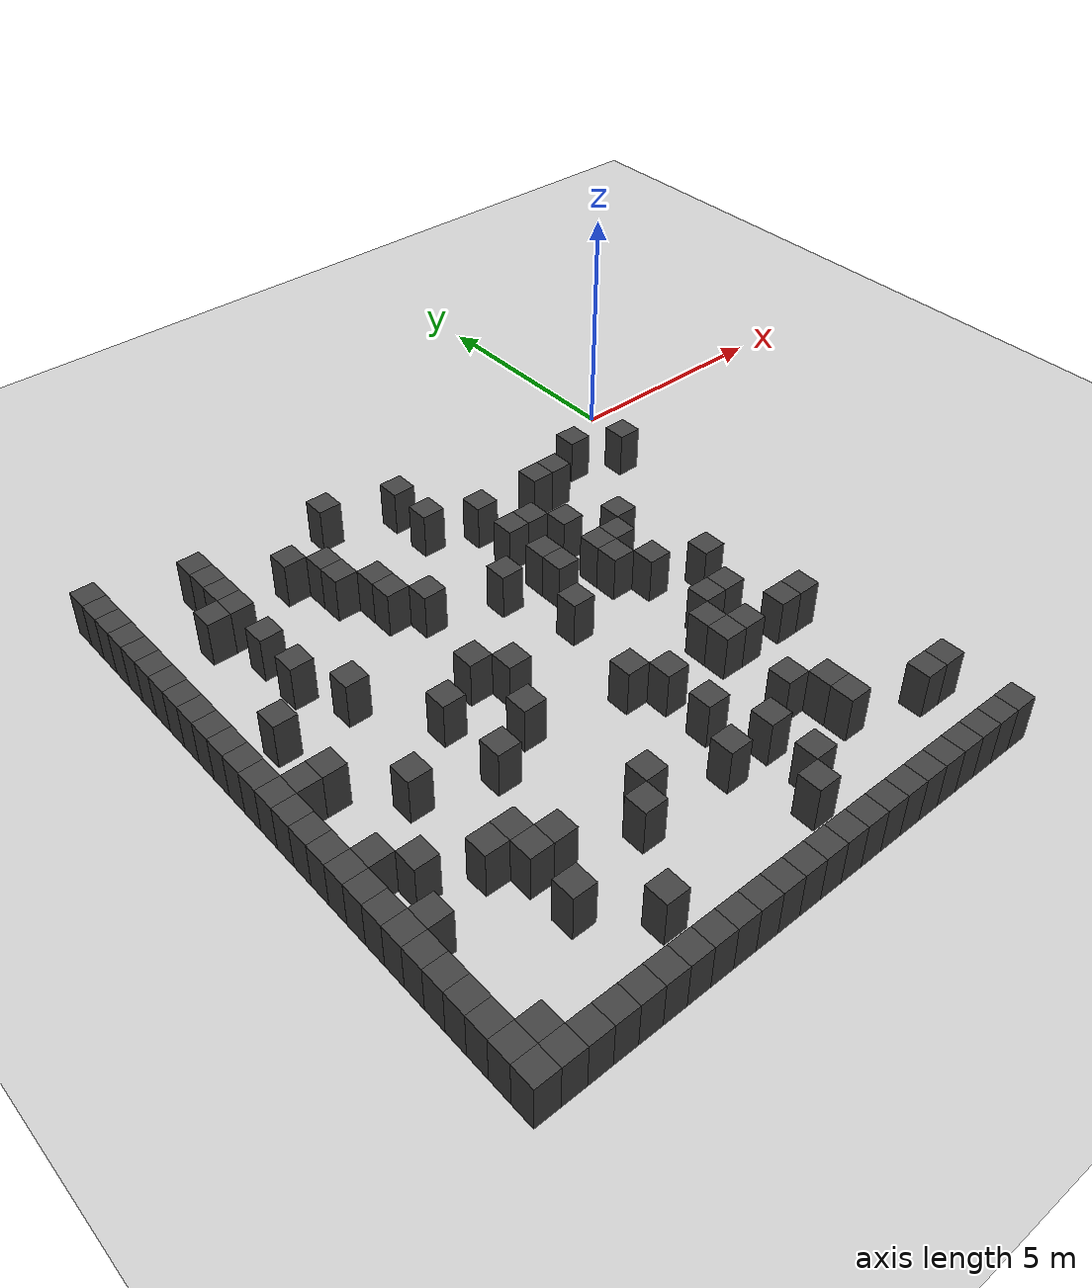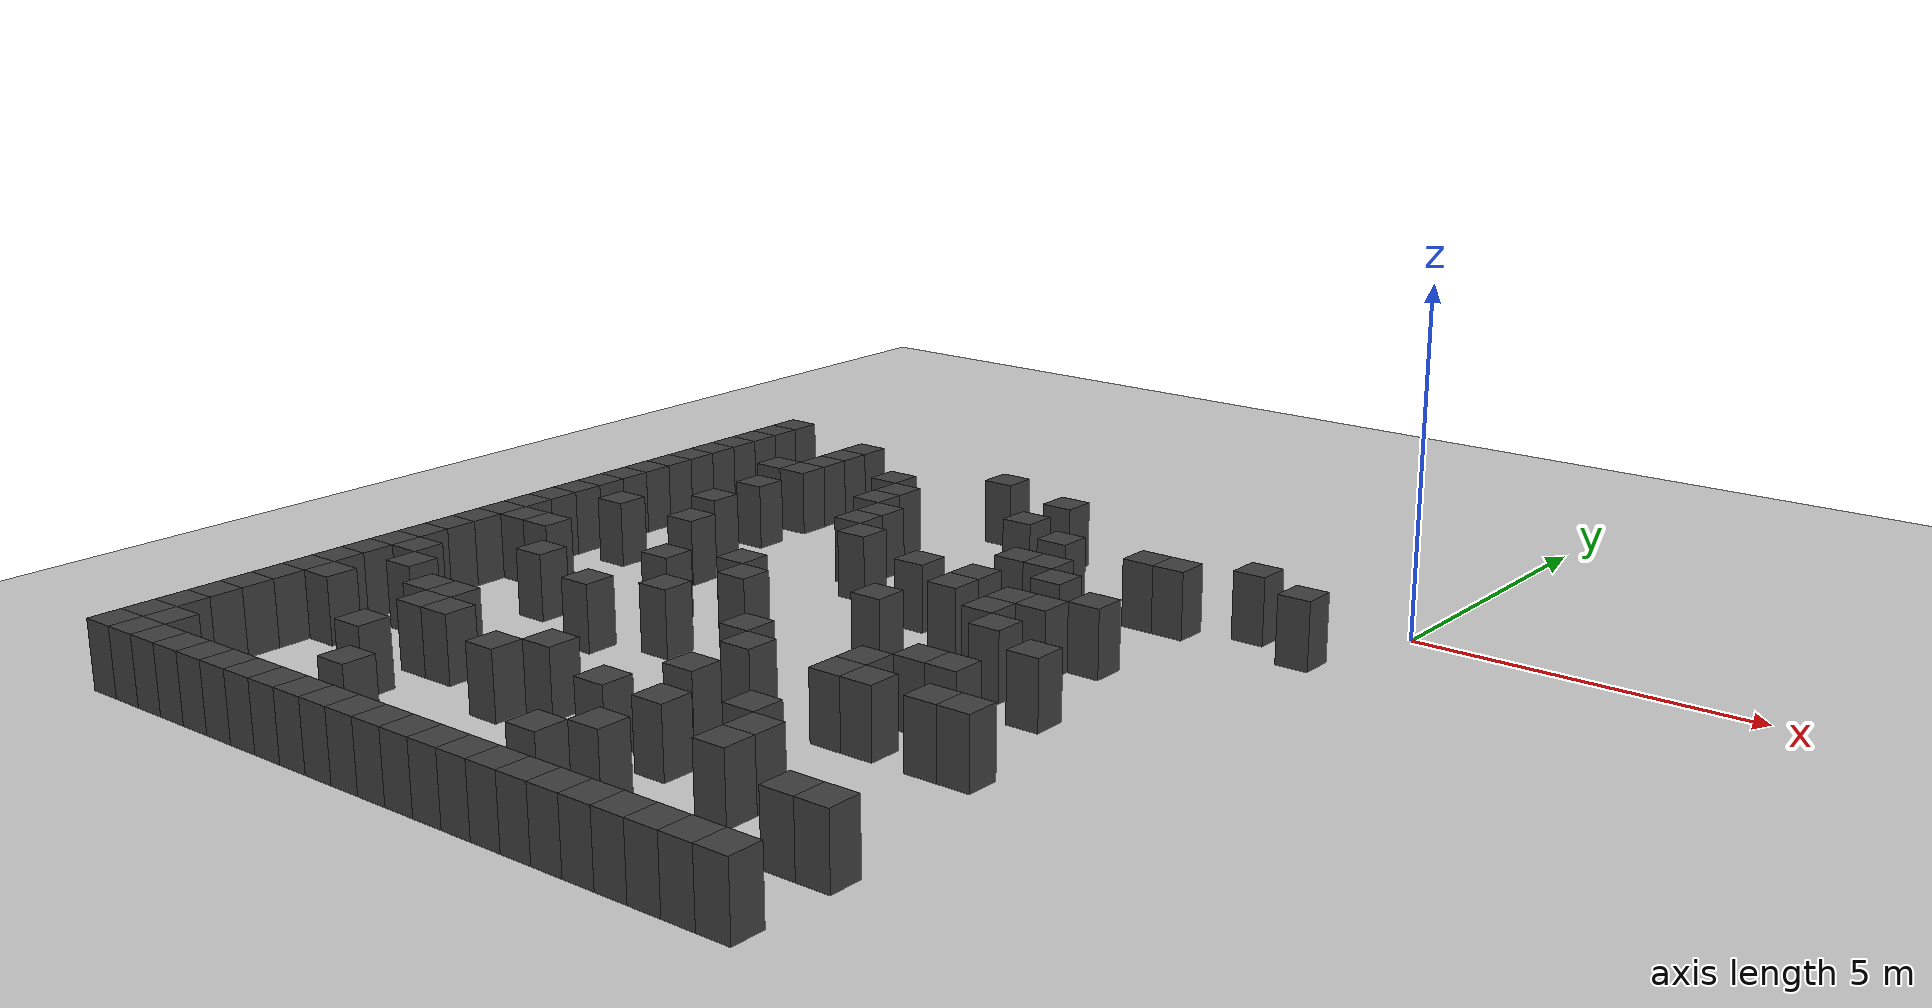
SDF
<sdf version="1.7">
 <world name="map_2523">
  <model name="ground_plane">
   <static>true</static>
   <link name="link">
    <collision name="collision">
     <geometry><plane><normal>0 0 1</normal><size>200 200</size></plane></geometry>
    </collision>
    <visual name="visual">
     <geometry><plane><normal>0 0 1</normal><size>200 200</size></plane></geometry>
     <material><ambient>0.8 0.8 0.8 1</ambient><diffuse>0.8 0.8 0.8 1</diffuse></material>
    </visual>
   </link>
  </model>
  <model name="maze_environment">
   <static>true</static>
   <link name="wall_234">
    <pose>-12.250 0.750 0.500 0 0 0</pose>
    <collision name="col"><geometry><box><size>0.5 0.5 1.0</size></box></geometry></collision>
    <visual name="vis">
     <geometry><box><size>0.5 0.5 1.0</size></box></geometry>
     <material><ambient>0.15 0.15 0.15 1</ambient><diffuse>0.25 0.25 0.25 1</diffuse></material>
    </visual>
   </link>
   <link name="wall_247">
    <pose>-12.250 0.250 0.500 0 0 0</pose>
    <collision name="col"><geometry><box><size>0.5 0.5 1.0</size></box></geometry></collision>
    <visual name="vis">
     <geometry><box><size>0.5 0.5 1.0</size></box></geometry>
     <material><ambient>0.15 0.15 0.15 1</ambient><diffuse>0.25 0.25 0.25 1</diffuse></material>
    </visual>
   </link>
   <link name="wall_248">
    <pose>-10.250 0.250 0.500 0 0 0</pose>
    <collision name="col"><geometry><box><size>0.5 0.5 1.0</size></box></geometry></collision>
    <visual name="vis">
     <geometry><box><size>0.5 0.5 1.0</size></box></geometry>
     <material><ambient>0.15 0.15 0.15 1</ambient><diffuse>0.25 0.25 0.25 1</diffuse></material>
    </visual>
   </link>
   <link name="wall_249">
    <pose>-7.250 0.250 0.500 0 0 0</pose>
    <collision name="col"><geometry><box><size>0.5 0.5 1.0</size></box></geometry></collision>
    <visual name="vis">
     <geometry><box><size>0.5 0.5 1.0</size></box></geometry>
     <material><ambient>0.15 0.15 0.15 1</ambient><diffuse>0.25 0.25 0.25 1</diffuse></material>
    </visual>
   </link>
   <link name="wall_258">
    <pose>-12.250 -0.250 0.500 0 0 0</pose>
    <collision name="col"><geometry><box><size>0.5 0.5 1.0</size></box></geometry></collision>
    <visual name="vis">
     <geometry><box><size>0.5 0.5 1.0</size></box></geometry>
     <material><ambient>0.15 0.15 0.15 1</ambient><diffuse>0.25 0.25 0.25 1</diffuse></material>
    </visual>
   </link>
   <link name="wall_259">
    <pose>-10.250 -0.250 0.500 0 0 0</pose>
    <collision name="col"><geometry><box><size>0.5 0.5 1.0</size></box></geometry></collision>
    <visual name="vis">
     <geometry><box><size>0.5 0.5 1.0</size></box></geometry>
     <material><ambient>0.15 0.15 0.15 1</ambient><diffuse>0.25 0.25 0.25 1</diffuse></material>
    </visual>
   </link>
   <link name="wall_260">
    <pose>-5.750 -0.250 0.500 0 0 0</pose>
    <collision name="col"><geometry><box><size>0.5 0.5 1.0</size></box></geometry></collision>
    <visual name="vis">
     <geometry><box><size>0.5 0.5 1.0</size></box></geometry>
     <material><ambient>0.15 0.15 0.15 1</ambient><diffuse>0.25 0.25 0.25 1</diffuse></material>
    </visual>
   </link>
   <link name="wall_263">
    <pose>-12.250 -0.750 0.500 0 0 0</pose>
    <collision name="col"><geometry><box><size>0.5 0.5 1.0</size></box></geometry></collision>
    <visual name="vis">
     <geometry><box><size>0.5 0.5 1.0</size></box></geometry>
     <material><ambient>0.15 0.15 0.15 1</ambient><diffuse>0.25 0.25 0.25 1</diffuse></material>
    </visual>
   </link>
   <link name="wall_264">
    <pose>-10.250 -0.750 0.500 0 0 0</pose>
    <collision name="col"><geometry><box><size>0.5 0.5 1.0</size></box></geometry></collision>
    <visual name="vis">
     <geometry><box><size>0.5 0.5 1.0</size></box></geometry>
     <material><ambient>0.15 0.15 0.15 1</ambient><diffuse>0.25 0.25 0.25 1</diffuse></material>
    </visual>
   </link>
   <link name="wall_265">
    <pose>-8.750 -0.750 0.500 0 0 0</pose>
    <collision name="col"><geometry><box><size>0.5 0.5 1.0</size></box></geometry></collision>
    <visual name="vis">
     <geometry><box><size>0.5 0.5 1.0</size></box></geometry>
     <material><ambient>0.15 0.15 0.15 1</ambient><diffuse>0.25 0.25 0.25 1</diffuse></material>
    </visual>
   </link>
   <link name="wall_273">
    <pose>-12.250 -1.250 0.500 0 0 0</pose>
    <collision name="col"><geometry><box><size>0.5 0.5 1.0</size></box></geometry></collision>
    <visual name="vis">
     <geometry><box><size>0.5 0.5 1.0</size></box></geometry>
     <material><ambient>0.15 0.15 0.15 1</ambient><diffuse>0.25 0.25 0.25 1</diffuse></material>
    </visual>
   </link>
   <link name="wall_274">
    <pose>-10.750 -1.250 0.500 0 0 0</pose>
    <collision name="col"><geometry><box><size>0.5 0.5 1.0</size></box></geometry></collision>
    <visual name="vis">
     <geometry><box><size>0.5 0.5 1.0</size></box></geometry>
     <material><ambient>0.15 0.15 0.15 1</ambient><diffuse>0.25 0.25 0.25 1</diffuse></material>
    </visual>
   </link>
   <link name="wall_275">
    <pose>-10.250 -1.250 0.500 0 0 0</pose>
    <collision name="col"><geometry><box><size>0.5 0.5 1.0</size></box></geometry></collision>
    <visual name="vis">
     <geometry><box><size>0.5 0.5 1.0</size></box></geometry>
     <material><ambient>0.15 0.15 0.15 1</ambient><diffuse>0.25 0.25 0.25 1</diffuse></material>
    </visual>
   </link>
   <link name="wall_276">
    <pose>-8.250 -1.250 0.500 0 0 0</pose>
    <collision name="col"><geometry><box><size>0.5 0.5 1.0</size></box></geometry></collision>
    <visual name="vis">
     <geometry><box><size>0.5 0.5 1.0</size></box></geometry>
     <material><ambient>0.15 0.15 0.15 1</ambient><diffuse>0.25 0.25 0.25 1</diffuse></material>
    </visual>
   </link>
   <link name="wall_277">
    <pose>-5.750 -1.250 0.500 0 0 0</pose>
    <collision name="col"><geometry><box><size>0.5 0.5 1.0</size></box></geometry></collision>
    <visual name="vis">
     <geometry><box><size>0.5 0.5 1.0</size></box></geometry>
     <material><ambient>0.15 0.15 0.15 1</ambient><diffuse>0.25 0.25 0.25 1</diffuse></material>
    </visual>
   </link>
   <link name="wall_278">
    <pose>-1.750 -1.250 0.500 0 0 0</pose>
    <collision name="col"><geometry><box><size>0.5 0.5 1.0</size></box></geometry></collision>
    <visual name="vis">
     <geometry><box><size>0.5 0.5 1.0</size></box></geometry>
     <material><ambient>0.15 0.15 0.15 1</ambient><diffuse>0.25 0.25 0.25 1</diffuse></material>
    </visual>
   </link>
   <link name="wall_284">
    <pose>-12.250 -1.750 0.500 0 0 0</pose>
    <collision name="col"><geometry><box><size>0.5 0.5 1.0</size></box></geometry></collision>
    <visual name="vis">
     <geometry><box><size>0.5 0.5 1.0</size></box></geometry>
     <material><ambient>0.15 0.15 0.15 1</ambient><diffuse>0.25 0.25 0.25 1</diffuse></material>
    </visual>
   </link>
   <link name="wall_285">
    <pose>-8.250 -1.750 0.500 0 0 0</pose>
    <collision name="col"><geometry><box><size>0.5 0.5 1.0</size></box></geometry></collision>
    <visual name="vis">
     <geometry><box><size>0.5 0.5 1.0</size></box></geometry>
     <material><ambient>0.15 0.15 0.15 1</ambient><diffuse>0.25 0.25 0.25 1</diffuse></material>
    </visual>
   </link>
   <link name="wall_286">
    <pose>-4.750 -1.750 0.500 0 0 0</pose>
    <collision name="col"><geometry><box><size>0.5 0.5 1.0</size></box></geometry></collision>
    <visual name="vis">
     <geometry><box><size>0.5 0.5 1.0</size></box></geometry>
     <material><ambient>0.15 0.15 0.15 1</ambient><diffuse>0.25 0.25 0.25 1</diffuse></material>
    </visual>
   </link>
   <link name="wall_287">
    <pose>-3.250 -1.750 0.500 0 0 0</pose>
    <collision name="col"><geometry><box><size>0.5 0.5 1.0</size></box></geometry></collision>
    <visual name="vis">
     <geometry><box><size>0.5 0.5 1.0</size></box></geometry>
     <material><ambient>0.15 0.15 0.15 1</ambient><diffuse>0.25 0.25 0.25 1</diffuse></material>
    </visual>
   </link>
   <link name="wall_288">
    <pose>-2.750 -1.750 0.500 0 0 0</pose>
    <collision name="col"><geometry><box><size>0.5 0.5 1.0</size></box></geometry></collision>
    <visual name="vis">
     <geometry><box><size>0.5 0.5 1.0</size></box></geometry>
     <material><ambient>0.15 0.15 0.15 1</ambient><diffuse>0.25 0.25 0.25 1</diffuse></material>
    </visual>
   </link>
   <link name="wall_289">
    <pose>-0.750 -1.750 0.500 0 0 0</pose>
    <collision name="col"><geometry><box><size>0.5 0.5 1.0</size></box></geometry></collision>
    <visual name="vis">
     <geometry><box><size>0.5 0.5 1.0</size></box></geometry>
     <material><ambient>0.15 0.15 0.15 1</ambient><diffuse>0.25 0.25 0.25 1</diffuse></material>
    </visual>
   </link>
   <link name="wall_294">
    <pose>-12.250 -2.250 0.500 0 0 0</pose>
    <collision name="col"><geometry><box><size>0.5 0.5 1.0</size></box></geometry></collision>
    <visual name="vis">
     <geometry><box><size>0.5 0.5 1.0</size></box></geometry>
     <material><ambient>0.15 0.15 0.15 1</ambient><diffuse>0.25 0.25 0.25 1</diffuse></material>
    </visual>
   </link>
   <link name="wall_295">
    <pose>-10.250 -2.250 0.500 0 0 0</pose>
    <collision name="col"><geometry><box><size>0.5 0.5 1.0</size></box></geometry></collision>
    <visual name="vis">
     <geometry><box><size>0.5 0.5 1.0</size></box></geometry>
     <material><ambient>0.15 0.15 0.15 1</ambient><diffuse>0.25 0.25 0.25 1</diffuse></material>
    </visual>
   </link>
   <link name="wall_296">
    <pose>-7.750 -2.250 0.500 0 0 0</pose>
    <collision name="col"><geometry><box><size>0.5 0.5 1.0</size></box></geometry></collision>
    <visual name="vis">
     <geometry><box><size>0.5 0.5 1.0</size></box></geometry>
     <material><ambient>0.15 0.15 0.15 1</ambient><diffuse>0.25 0.25 0.25 1</diffuse></material>
    </visual>
   </link>
   <link name="wall_301">
    <pose>-12.250 -2.750 0.500 0 0 0</pose>
    <collision name="col"><geometry><box><size>0.5 0.5 1.0</size></box></geometry></collision>
    <visual name="vis">
     <geometry><box><size>0.5 0.5 1.0</size></box></geometry>
     <material><ambient>0.15 0.15 0.15 1</ambient><diffuse>0.25 0.25 0.25 1</diffuse></material>
    </visual>
   </link>
   <link name="wall_302">
    <pose>-7.750 -2.750 0.500 0 0 0</pose>
    <collision name="col"><geometry><box><size>0.5 0.5 1.0</size></box></geometry></collision>
    <visual name="vis">
     <geometry><box><size>0.5 0.5 1.0</size></box></geometry>
     <material><ambient>0.15 0.15 0.15 1</ambient><diffuse>0.25 0.25 0.25 1</diffuse></material>
    </visual>
   </link>
   <link name="wall_303">
    <pose>-4.750 -2.750 0.500 0 0 0</pose>
    <collision name="col"><geometry><box><size>0.5 0.5 1.0</size></box></geometry></collision>
    <visual name="vis">
     <geometry><box><size>0.5 0.5 1.0</size></box></geometry>
     <material><ambient>0.15 0.15 0.15 1</ambient><diffuse>0.25 0.25 0.25 1</diffuse></material>
    </visual>
   </link>
   <link name="wall_304">
    <pose>-4.250 -2.750 0.500 0 0 0</pose>
    <collision name="col"><geometry><box><size>0.5 0.5 1.0</size></box></geometry></collision>
    <visual name="vis">
     <geometry><box><size>0.5 0.5 1.0</size></box></geometry>
     <material><ambient>0.15 0.15 0.15 1</ambient><diffuse>0.25 0.25 0.25 1</diffuse></material>
    </visual>
   </link>
   <link name="wall_308">
    <pose>-12.250 -3.250 0.500 0 0 0</pose>
    <collision name="col"><geometry><box><size>0.5 0.5 1.0</size></box></geometry></collision>
    <visual name="vis">
     <geometry><box><size>0.5 0.5 1.0</size></box></geometry>
     <material><ambient>0.15 0.15 0.15 1</ambient><diffuse>0.25 0.25 0.25 1</diffuse></material>
    </visual>
   </link>
   <link name="wall_309">
    <pose>-10.250 -3.250 0.500 0 0 0</pose>
    <collision name="col"><geometry><box><size>0.5 0.5 1.0</size></box></geometry></collision>
    <visual name="vis">
     <geometry><box><size>0.5 0.5 1.0</size></box></geometry>
     <material><ambient>0.15 0.15 0.15 1</ambient><diffuse>0.25 0.25 0.25 1</diffuse></material>
    </visual>
   </link>
   <link name="wall_310">
    <pose>-7.250 -3.250 0.500 0 0 0</pose>
    <collision name="col"><geometry><box><size>0.5 0.5 1.0</size></box></geometry></collision>
    <visual name="vis">
     <geometry><box><size>0.5 0.5 1.0</size></box></geometry>
     <material><ambient>0.15 0.15 0.15 1</ambient><diffuse>0.25 0.25 0.25 1</diffuse></material>
    </visual>
   </link>
   <link name="wall_311">
    <pose>-3.750 -3.250 0.500 0 0 0</pose>
    <collision name="col"><geometry><box><size>0.5 0.5 1.0</size></box></geometry></collision>
    <visual name="vis">
     <geometry><box><size>0.5 0.5 1.0</size></box></geometry>
     <material><ambient>0.15 0.15 0.15 1</ambient><diffuse>0.25 0.25 0.25 1</diffuse></material>
    </visual>
   </link>
   <link name="wall_315">
    <pose>-12.250 -3.750 0.500 0 0 0</pose>
    <collision name="col"><geometry><box><size>0.5 0.5 1.0</size></box></geometry></collision>
    <visual name="vis">
     <geometry><box><size>0.5 0.5 1.0</size></box></geometry>
     <material><ambient>0.15 0.15 0.15 1</ambient><diffuse>0.25 0.25 0.25 1</diffuse></material>
    </visual>
   </link>
   <link name="wall_316">
    <pose>-5.750 -3.750 0.500 0 0 0</pose>
    <collision name="col"><geometry><box><size>0.5 0.5 1.0</size></box></geometry></collision>
    <visual name="vis">
     <geometry><box><size>0.5 0.5 1.0</size></box></geometry>
     <material><ambient>0.15 0.15 0.15 1</ambient><diffuse>0.25 0.25 0.25 1</diffuse></material>
    </visual>
   </link>
   <link name="wall_317">
    <pose>-4.750 -3.750 0.500 0 0 0</pose>
    <collision name="col"><geometry><box><size>0.5 0.5 1.0</size></box></geometry></collision>
    <visual name="vis">
     <geometry><box><size>0.5 0.5 1.0</size></box></geometry>
     <material><ambient>0.15 0.15 0.15 1</ambient><diffuse>0.25 0.25 0.25 1</diffuse></material>
    </visual>
   </link>
   <link name="wall_318">
    <pose>-2.750 -3.750 0.500 0 0 0</pose>
    <collision name="col"><geometry><box><size>0.5 0.5 1.0</size></box></geometry></collision>
    <visual name="vis">
     <geometry><box><size>0.5 0.5 1.0</size></box></geometry>
     <material><ambient>0.15 0.15 0.15 1</ambient><diffuse>0.25 0.25 0.25 1</diffuse></material>
    </visual>
   </link>
   <link name="wall_321">
    <pose>-12.250 -4.250 0.500 0 0 0</pose>
    <collision name="col"><geometry><box><size>0.5 0.5 1.0</size></box></geometry></collision>
    <visual name="vis">
     <geometry><box><size>0.5 0.5 1.0</size></box></geometry>
     <material><ambient>0.15 0.15 0.15 1</ambient><diffuse>0.25 0.25 0.25 1</diffuse></material>
    </visual>
   </link>
   <link name="wall_322">
    <pose>-11.250 -4.250 0.500 0 0 0</pose>
    <collision name="col"><geometry><box><size>0.5 0.5 1.0</size></box></geometry></collision>
    <visual name="vis">
     <geometry><box><size>0.5 0.5 1.0</size></box></geometry>
     <material><ambient>0.15 0.15 0.15 1</ambient><diffuse>0.25 0.25 0.25 1</diffuse></material>
    </visual>
   </link>
   <link name="wall_323">
    <pose>-9.750 -4.250 0.500 0 0 0</pose>
    <collision name="col"><geometry><box><size>0.5 0.5 1.0</size></box></geometry></collision>
    <visual name="vis">
     <geometry><box><size>0.5 0.5 1.0</size></box></geometry>
     <material><ambient>0.15 0.15 0.15 1</ambient><diffuse>0.25 0.25 0.25 1</diffuse></material>
    </visual>
   </link>
   <link name="wall_324">
    <pose>-4.750 -4.250 0.500 0 0 0</pose>
    <collision name="col"><geometry><box><size>0.5 0.5 1.0</size></box></geometry></collision>
    <visual name="vis">
     <geometry><box><size>0.5 0.5 1.0</size></box></geometry>
     <material><ambient>0.15 0.15 0.15 1</ambient><diffuse>0.25 0.25 0.25 1</diffuse></material>
    </visual>
   </link>
   <link name="wall_325">
    <pose>-3.750 -4.250 0.500 0 0 0</pose>
    <collision name="col"><geometry><box><size>0.5 0.5 1.0</size></box></geometry></collision>
    <visual name="vis">
     <geometry><box><size>0.5 0.5 1.0</size></box></geometry>
     <material><ambient>0.15 0.15 0.15 1</ambient><diffuse>0.25 0.25 0.25 1</diffuse></material>
    </visual>
   </link>
   <link name="wall_326">
    <pose>-3.250 -4.250 0.500 0 0 0</pose>
    <collision name="col"><geometry><box><size>0.5 0.5 1.0</size></box></geometry></collision>
    <visual name="vis">
     <geometry><box><size>0.5 0.5 1.0</size></box></geometry>
     <material><ambient>0.15 0.15 0.15 1</ambient><diffuse>0.25 0.25 0.25 1</diffuse></material>
    </visual>
   </link>
   <link name="wall_334">
    <pose>-12.250 -4.750 0.500 0 0 0</pose>
    <collision name="col"><geometry><box><size>0.5 0.5 1.0</size></box></geometry></collision>
    <visual name="vis">
     <geometry><box><size>0.5 0.5 1.0</size></box></geometry>
     <material><ambient>0.15 0.15 0.15 1</ambient><diffuse>0.25 0.25 0.25 1</diffuse></material>
    </visual>
   </link>
   <link name="wall_335">
    <pose>-3.750 -4.750 0.500 0 0 0</pose>
    <collision name="col"><geometry><box><size>0.5 0.5 1.0</size></box></geometry></collision>
    <visual name="vis">
     <geometry><box><size>0.5 0.5 1.0</size></box></geometry>
     <material><ambient>0.15 0.15 0.15 1</ambient><diffuse>0.25 0.25 0.25 1</diffuse></material>
    </visual>
   </link>
   <link name="wall_340">
    <pose>-12.250 -5.250 0.500 0 0 0</pose>
    <collision name="col"><geometry><box><size>0.5 0.5 1.0</size></box></geometry></collision>
    <visual name="vis">
     <geometry><box><size>0.5 0.5 1.0</size></box></geometry>
     <material><ambient>0.15 0.15 0.15 1</ambient><diffuse>0.25 0.25 0.25 1</diffuse></material>
    </visual>
   </link>
   <link name="wall_341">
    <pose>-7.750 -5.250 0.500 0 0 0</pose>
    <collision name="col"><geometry><box><size>0.5 0.5 1.0</size></box></geometry></collision>
    <visual name="vis">
     <geometry><box><size>0.5 0.5 1.0</size></box></geometry>
     <material><ambient>0.15 0.15 0.15 1</ambient><diffuse>0.25 0.25 0.25 1</diffuse></material>
    </visual>
   </link>
   <link name="wall_342">
    <pose>-5.250 -5.250 0.500 0 0 0</pose>
    <collision name="col"><geometry><box><size>0.5 0.5 1.0</size></box></geometry></collision>
    <visual name="vis">
     <geometry><box><size>0.5 0.5 1.0</size></box></geometry>
     <material><ambient>0.15 0.15 0.15 1</ambient><diffuse>0.25 0.25 0.25 1</diffuse></material>
    </visual>
   </link>
   <link name="wall_343">
    <pose>-3.250 -5.250 0.500 0 0 0</pose>
    <collision name="col"><geometry><box><size>0.5 0.5 1.0</size></box></geometry></collision>
    <visual name="vis">
     <geometry><box><size>0.5 0.5 1.0</size></box></geometry>
     <material><ambient>0.15 0.15 0.15 1</ambient><diffuse>0.25 0.25 0.25 1</diffuse></material>
    </visual>
   </link>
   <link name="wall_346">
    <pose>-12.250 -5.750 0.500 0 0 0</pose>
    <collision name="col"><geometry><box><size>0.5 0.5 1.0</size></box></geometry></collision>
    <visual name="vis">
     <geometry><box><size>0.5 0.5 1.0</size></box></geometry>
     <material><ambient>0.15 0.15 0.15 1</ambient><diffuse>0.25 0.25 0.25 1</diffuse></material>
    </visual>
   </link>
   <link name="wall_347">
    <pose>-11.750 -5.750 0.500 0 0 0</pose>
    <collision name="col"><geometry><box><size>0.5 0.5 1.0</size></box></geometry></collision>
    <visual name="vis">
     <geometry><box><size>0.5 0.5 1.0</size></box></geometry>
     <material><ambient>0.15 0.15 0.15 1</ambient><diffuse>0.25 0.25 0.25 1</diffuse></material>
    </visual>
   </link>
   <link name="wall_348">
    <pose>-11.250 -5.750 0.500 0 0 0</pose>
    <collision name="col"><geometry><box><size>0.5 0.5 1.0</size></box></geometry></collision>
    <visual name="vis">
     <geometry><box><size>0.5 0.5 1.0</size></box></geometry>
     <material><ambient>0.15 0.15 0.15 1</ambient><diffuse>0.25 0.25 0.25 1</diffuse></material>
    </visual>
   </link>
   <link name="wall_349">
    <pose>-8.750 -5.750 0.500 0 0 0</pose>
    <collision name="col"><geometry><box><size>0.5 0.5 1.0</size></box></geometry></collision>
    <visual name="vis">
     <geometry><box><size>0.5 0.5 1.0</size></box></geometry>
     <material><ambient>0.15 0.15 0.15 1</ambient><diffuse>0.25 0.25 0.25 1</diffuse></material>
    </visual>
   </link>
   <link name="wall_350">
    <pose>-7.250 -5.750 0.500 0 0 0</pose>
    <collision name="col"><geometry><box><size>0.5 0.5 1.0</size></box></geometry></collision>
    <visual name="vis">
     <geometry><box><size>0.5 0.5 1.0</size></box></geometry>
     <material><ambient>0.15 0.15 0.15 1</ambient><diffuse>0.25 0.25 0.25 1</diffuse></material>
    </visual>
   </link>
   <link name="wall_351">
    <pose>-2.250 -5.750 0.500 0 0 0</pose>
    <collision name="col"><geometry><box><size>0.5 0.5 1.0</size></box></geometry></collision>
    <visual name="vis">
     <geometry><box><size>0.5 0.5 1.0</size></box></geometry>
     <material><ambient>0.15 0.15 0.15 1</ambient><diffuse>0.25 0.25 0.25 1</diffuse></material>
    </visual>
   </link>
   <link name="wall_355">
    <pose>-12.250 -6.250 0.500 0 0 0</pose>
    <collision name="col"><geometry><box><size>0.5 0.5 1.0</size></box></geometry></collision>
    <visual name="vis">
     <geometry><box><size>0.5 0.5 1.0</size></box></geometry>
     <material><ambient>0.15 0.15 0.15 1</ambient><diffuse>0.25 0.25 0.25 1</diffuse></material>
    </visual>
   </link>
   <link name="wall_359">
    <pose>-12.250 -6.750 0.500 0 0 0</pose>
    <collision name="col"><geometry><box><size>0.5 0.5 1.0</size></box></geometry></collision>
    <visual name="vis">
     <geometry><box><size>0.5 0.5 1.0</size></box></geometry>
     <material><ambient>0.15 0.15 0.15 1</ambient><diffuse>0.25 0.25 0.25 1</diffuse></material>
    </visual>
   </link>
   <link name="wall_360">
    <pose>-10.250 -6.750 0.500 0 0 0</pose>
    <collision name="col"><geometry><box><size>0.5 0.5 1.0</size></box></geometry></collision>
    <visual name="vis">
     <geometry><box><size>0.5 0.5 1.0</size></box></geometry>
     <material><ambient>0.15 0.15 0.15 1</ambient><diffuse>0.25 0.25 0.25 1</diffuse></material>
    </visual>
   </link>
   <link name="wall_361">
    <pose>-7.750 -6.750 0.500 0 0 0</pose>
    <collision name="col"><geometry><box><size>0.5 0.5 1.0</size></box></geometry></collision>
    <visual name="vis">
     <geometry><box><size>0.5 0.5 1.0</size></box></geometry>
     <material><ambient>0.15 0.15 0.15 1</ambient><diffuse>0.25 0.25 0.25 1</diffuse></material>
    </visual>
   </link>
   <link name="wall_362">
    <pose>-3.250 -6.750 0.500 0 0 0</pose>
    <collision name="col"><geometry><box><size>0.5 0.5 1.0</size></box></geometry></collision>
    <visual name="vis">
     <geometry><box><size>0.5 0.5 1.0</size></box></geometry>
     <material><ambient>0.15 0.15 0.15 1</ambient><diffuse>0.25 0.25 0.25 1</diffuse></material>
    </visual>
   </link>
   <link name="wall_363">
    <pose>-2.750 -6.750 0.500 0 0 0</pose>
    <collision name="col"><geometry><box><size>0.5 0.5 1.0</size></box></geometry></collision>
    <visual name="vis">
     <geometry><box><size>0.5 0.5 1.0</size></box></geometry>
     <material><ambient>0.15 0.15 0.15 1</ambient><diffuse>0.25 0.25 0.25 1</diffuse></material>
    </visual>
   </link>
   <link name="wall_369">
    <pose>-12.250 -7.250 0.500 0 0 0</pose>
    <collision name="col"><geometry><box><size>0.5 0.5 1.0</size></box></geometry></collision>
    <visual name="vis">
     <geometry><box><size>0.5 0.5 1.0</size></box></geometry>
     <material><ambient>0.15 0.15 0.15 1</ambient><diffuse>0.25 0.25 0.25 1</diffuse></material>
    </visual>
   </link>
   <link name="wall_370">
    <pose>-8.750 -7.250 0.500 0 0 0</pose>
    <collision name="col"><geometry><box><size>0.5 0.5 1.0</size></box></geometry></collision>
    <visual name="vis">
     <geometry><box><size>0.5 0.5 1.0</size></box></geometry>
     <material><ambient>0.15 0.15 0.15 1</ambient><diffuse>0.25 0.25 0.25 1</diffuse></material>
    </visual>
   </link>
   <link name="wall_371">
    <pose>-5.750 -7.250 0.500 0 0 0</pose>
    <collision name="col"><geometry><box><size>0.5 0.5 1.0</size></box></geometry></collision>
    <visual name="vis">
     <geometry><box><size>0.5 0.5 1.0</size></box></geometry>
     <material><ambient>0.15 0.15 0.15 1</ambient><diffuse>0.25 0.25 0.25 1</diffuse></material>
    </visual>
   </link>
   <link name="wall_372">
    <pose>-3.750 -7.250 0.500 0 0 0</pose>
    <collision name="col"><geometry><box><size>0.5 0.5 1.0</size></box></geometry></collision>
    <visual name="vis">
     <geometry><box><size>0.5 0.5 1.0</size></box></geometry>
     <material><ambient>0.15 0.15 0.15 1</ambient><diffuse>0.25 0.25 0.25 1</diffuse></material>
    </visual>
   </link>
   <link name="wall_378">
    <pose>-12.250 -7.750 0.500 0 0 0</pose>
    <collision name="col"><geometry><box><size>0.5 0.5 1.0</size></box></geometry></collision>
    <visual name="vis">
     <geometry><box><size>0.5 0.5 1.0</size></box></geometry>
     <material><ambient>0.15 0.15 0.15 1</ambient><diffuse>0.25 0.25 0.25 1</diffuse></material>
    </visual>
   </link>
   <link name="wall_379">
    <pose>-11.750 -7.750 0.500 0 0 0</pose>
    <collision name="col"><geometry><box><size>0.5 0.5 1.0</size></box></geometry></collision>
    <visual name="vis">
     <geometry><box><size>0.5 0.5 1.0</size></box></geometry>
     <material><ambient>0.15 0.15 0.15 1</ambient><diffuse>0.25 0.25 0.25 1</diffuse></material>
    </visual>
   </link>
   <link name="wall_380">
    <pose>-5.250 -7.750 0.500 0 0 0</pose>
    <collision name="col"><geometry><box><size>0.5 0.5 1.0</size></box></geometry></collision>
    <visual name="vis">
     <geometry><box><size>0.5 0.5 1.0</size></box></geometry>
     <material><ambient>0.15 0.15 0.15 1</ambient><diffuse>0.25 0.25 0.25 1</diffuse></material>
    </visual>
   </link>
   <link name="wall_381">
    <pose>-3.750 -7.750 0.500 0 0 0</pose>
    <collision name="col"><geometry><box><size>0.5 0.5 1.0</size></box></geometry></collision>
    <visual name="vis">
     <geometry><box><size>0.5 0.5 1.0</size></box></geometry>
     <material><ambient>0.15 0.15 0.15 1</ambient><diffuse>0.25 0.25 0.25 1</diffuse></material>
    </visual>
   </link>
   <link name="wall_382">
    <pose>-3.250 -7.750 0.500 0 0 0</pose>
    <collision name="col"><geometry><box><size>0.5 0.5 1.0</size></box></geometry></collision>
    <visual name="vis">
     <geometry><box><size>0.5 0.5 1.0</size></box></geometry>
     <material><ambient>0.15 0.15 0.15 1</ambient><diffuse>0.25 0.25 0.25 1</diffuse></material>
    </visual>
   </link>
   <link name="wall_383">
    <pose>-2.250 -7.750 0.500 0 0 0</pose>
    <collision name="col"><geometry><box><size>0.5 0.5 1.0</size></box></geometry></collision>
    <visual name="vis">
     <geometry><box><size>0.5 0.5 1.0</size></box></geometry>
     <material><ambient>0.15 0.15 0.15 1</ambient><diffuse>0.25 0.25 0.25 1</diffuse></material>
    </visual>
   </link>
   <link name="wall_384">
    <pose>-1.750 -7.750 0.500 0 0 0</pose>
    <collision name="col"><geometry><box><size>0.5 0.5 1.0</size></box></geometry></collision>
    <visual name="vis">
     <geometry><box><size>0.5 0.5 1.0</size></box></geometry>
     <material><ambient>0.15 0.15 0.15 1</ambient><diffuse>0.25 0.25 0.25 1</diffuse></material>
    </visual>
   </link>
   <link name="wall_389">
    <pose>-12.250 -8.250 0.500 0 0 0</pose>
    <collision name="col"><geometry><box><size>0.5 0.5 1.0</size></box></geometry></collision>
    <visual name="vis">
     <geometry><box><size>0.5 0.5 1.0</size></box></geometry>
     <material><ambient>0.15 0.15 0.15 1</ambient><diffuse>0.25 0.25 0.25 1</diffuse></material>
    </visual>
   </link>
   <link name="wall_390">
    <pose>-11.250 -8.250 0.500 0 0 0</pose>
    <collision name="col"><geometry><box><size>0.5 0.5 1.0</size></box></geometry></collision>
    <visual name="vis">
     <geometry><box><size>0.5 0.5 1.0</size></box></geometry>
     <material><ambient>0.15 0.15 0.15 1</ambient><diffuse>0.25 0.25 0.25 1</diffuse></material>
    </visual>
   </link>
   <link name="wall_395">
    <pose>-12.250 -8.750 0.500 0 0 0</pose>
    <collision name="col"><geometry><box><size>0.5 0.5 1.0</size></box></geometry></collision>
    <visual name="vis">
     <geometry><box><size>0.5 0.5 1.0</size></box></geometry>
     <material><ambient>0.15 0.15 0.15 1</ambient><diffuse>0.25 0.25 0.25 1</diffuse></material>
    </visual>
   </link>
   <link name="wall_396">
    <pose>-10.250 -8.750 0.500 0 0 0</pose>
    <collision name="col"><geometry><box><size>0.5 0.5 1.0</size></box></geometry></collision>
    <visual name="vis">
     <geometry><box><size>0.5 0.5 1.0</size></box></geometry>
     <material><ambient>0.15 0.15 0.15 1</ambient><diffuse>0.25 0.25 0.25 1</diffuse></material>
    </visual>
   </link>
   <link name="wall_397">
    <pose>-9.750 -8.750 0.500 0 0 0</pose>
    <collision name="col"><geometry><box><size>0.5 0.5 1.0</size></box></geometry></collision>
    <visual name="vis">
     <geometry><box><size>0.5 0.5 1.0</size></box></geometry>
     <material><ambient>0.15 0.15 0.15 1</ambient><diffuse>0.25 0.25 0.25 1</diffuse></material>
    </visual>
   </link>
   <link name="wall_398">
    <pose>-5.250 -8.750 0.500 0 0 0</pose>
    <collision name="col"><geometry><box><size>0.5 0.5 1.0</size></box></geometry></collision>
    <visual name="vis">
     <geometry><box><size>0.5 0.5 1.0</size></box></geometry>
     <material><ambient>0.15 0.15 0.15 1</ambient><diffuse>0.25 0.25 0.25 1</diffuse></material>
    </visual>
   </link>
   <link name="wall_403">
    <pose>-12.250 -9.250 0.500 0 0 0</pose>
    <collision name="col"><geometry><box><size>0.5 0.5 1.0</size></box></geometry></collision>
    <visual name="vis">
     <geometry><box><size>0.5 0.5 1.0</size></box></geometry>
     <material><ambient>0.15 0.15 0.15 1</ambient><diffuse>0.25 0.25 0.25 1</diffuse></material>
    </visual>
   </link>
   <link name="wall_404">
    <pose>-11.750 -9.250 0.500 0 0 0</pose>
    <collision name="col"><geometry><box><size>0.5 0.5 1.0</size></box></geometry></collision>
    <visual name="vis">
     <geometry><box><size>0.5 0.5 1.0</size></box></geometry>
     <material><ambient>0.15 0.15 0.15 1</ambient><diffuse>0.25 0.25 0.25 1</diffuse></material>
    </visual>
   </link>
   <link name="wall_405">
    <pose>-9.750 -9.250 0.500 0 0 0</pose>
    <collision name="col"><geometry><box><size>0.5 0.5 1.0</size></box></geometry></collision>
    <visual name="vis">
     <geometry><box><size>0.5 0.5 1.0</size></box></geometry>
     <material><ambient>0.15 0.15 0.15 1</ambient><diffuse>0.25 0.25 0.25 1</diffuse></material>
    </visual>
   </link>
   <link name="wall_406">
    <pose>-9.250 -9.250 0.500 0 0 0</pose>
    <collision name="col"><geometry><box><size>0.5 0.5 1.0</size></box></geometry></collision>
    <visual name="vis">
     <geometry><box><size>0.5 0.5 1.0</size></box></geometry>
     <material><ambient>0.15 0.15 0.15 1</ambient><diffuse>0.25 0.25 0.25 1</diffuse></material>
    </visual>
   </link>
   <link name="wall_407">
    <pose>-7.250 -9.250 0.500 0 0 0</pose>
    <collision name="col"><geometry><box><size>0.5 0.5 1.0</size></box></geometry></collision>
    <visual name="vis">
     <geometry><box><size>0.5 0.5 1.0</size></box></geometry>
     <material><ambient>0.15 0.15 0.15 1</ambient><diffuse>0.25 0.25 0.25 1</diffuse></material>
    </visual>
   </link>
   <link name="wall_408">
    <pose>-3.750 -9.250 0.500 0 0 0</pose>
    <collision name="col"><geometry><box><size>0.5 0.5 1.0</size></box></geometry></collision>
    <visual name="vis">
     <geometry><box><size>0.5 0.5 1.0</size></box></geometry>
     <material><ambient>0.15 0.15 0.15 1</ambient><diffuse>0.25 0.25 0.25 1</diffuse></material>
    </visual>
   </link>
   <link name="wall_413">
    <pose>-12.250 -9.750 0.500 0 0 0</pose>
    <collision name="col"><geometry><box><size>0.5 0.5 1.0</size></box></geometry></collision>
    <visual name="vis">
     <geometry><box><size>0.5 0.5 1.0</size></box></geometry>
     <material><ambient>0.15 0.15 0.15 1</ambient><diffuse>0.25 0.25 0.25 1</diffuse></material>
    </visual>
   </link>
   <link name="wall_414">
    <pose>-7.750 -9.750 0.500 0 0 0</pose>
    <collision name="col"><geometry><box><size>0.5 0.5 1.0</size></box></geometry></collision>
    <visual name="vis">
     <geometry><box><size>0.5 0.5 1.0</size></box></geometry>
     <material><ambient>0.15 0.15 0.15 1</ambient><diffuse>0.25 0.25 0.25 1</diffuse></material>
    </visual>
   </link>
   <link name="wall_415">
    <pose>-5.750 -9.750 0.500 0 0 0</pose>
    <collision name="col"><geometry><box><size>0.5 0.5 1.0</size></box></geometry></collision>
    <visual name="vis">
     <geometry><box><size>0.5 0.5 1.0</size></box></geometry>
     <material><ambient>0.15 0.15 0.15 1</ambient><diffuse>0.25 0.25 0.25 1</diffuse></material>
    </visual>
   </link>
   <link name="wall_416">
    <pose>-4.750 -9.750 0.500 0 0 0</pose>
    <collision name="col"><geometry><box><size>0.5 0.5 1.0</size></box></geometry></collision>
    <visual name="vis">
     <geometry><box><size>0.5 0.5 1.0</size></box></geometry>
     <material><ambient>0.15 0.15 0.15 1</ambient><diffuse>0.25 0.25 0.25 1</diffuse></material>
    </visual>
   </link>
   <link name="wall_417">
    <pose>-3.250 -9.750 0.500 0 0 0</pose>
    <collision name="col"><geometry><box><size>0.5 0.5 1.0</size></box></geometry></collision>
    <visual name="vis">
     <geometry><box><size>0.5 0.5 1.0</size></box></geometry>
     <material><ambient>0.15 0.15 0.15 1</ambient><diffuse>0.25 0.25 0.25 1</diffuse></material>
    </visual>
   </link>
   <link name="wall_420">
    <pose>-12.250 -10.250 0.500 0 0 0</pose>
    <collision name="col"><geometry><box><size>0.5 0.5 1.0</size></box></geometry></collision>
    <visual name="vis">
     <geometry><box><size>0.5 0.5 1.0</size></box></geometry>
     <material><ambient>0.15 0.15 0.15 1</ambient><diffuse>0.25 0.25 0.25 1</diffuse></material>
    </visual>
   </link>
   <link name="wall_421">
    <pose>-9.750 -10.250 0.500 0 0 0</pose>
    <collision name="col"><geometry><box><size>0.5 0.5 1.0</size></box></geometry></collision>
    <visual name="vis">
     <geometry><box><size>0.5 0.5 1.0</size></box></geometry>
     <material><ambient>0.15 0.15 0.15 1</ambient><diffuse>0.25 0.25 0.25 1</diffuse></material>
    </visual>
   </link>
   <link name="wall_422">
    <pose>-3.250 -10.250 0.500 0 0 0</pose>
    <collision name="col"><geometry><box><size>0.5 0.5 1.0</size></box></geometry></collision>
    <visual name="vis">
     <geometry><box><size>0.5 0.5 1.0</size></box></geometry>
     <material><ambient>0.15 0.15 0.15 1</ambient><diffuse>0.25 0.25 0.25 1</diffuse></material>
    </visual>
   </link>
   <link name="wall_426">
    <pose>-12.250 -10.750 0.500 0 0 0</pose>
    <collision name="col"><geometry><box><size>0.5 0.5 1.0</size></box></geometry></collision>
    <visual name="vis">
     <geometry><box><size>0.5 0.5 1.0</size></box></geometry>
     <material><ambient>0.15 0.15 0.15 1</ambient><diffuse>0.25 0.25 0.25 1</diffuse></material>
    </visual>
   </link>
   <link name="wall_427">
    <pose>-4.750 -10.750 0.500 0 0 0</pose>
    <collision name="col"><geometry><box><size>0.5 0.5 1.0</size></box></geometry></collision>
    <visual name="vis">
     <geometry><box><size>0.5 0.5 1.0</size></box></geometry>
     <material><ambient>0.15 0.15 0.15 1</ambient><diffuse>0.25 0.25 0.25 1</diffuse></material>
    </visual>
   </link>
   <link name="wall_428">
    <pose>-1.750 -10.750 0.500 0 0 0</pose>
    <collision name="col"><geometry><box><size>0.5 0.5 1.0</size></box></geometry></collision>
    <visual name="vis">
     <geometry><box><size>0.5 0.5 1.0</size></box></geometry>
     <material><ambient>0.15 0.15 0.15 1</ambient><diffuse>0.25 0.25 0.25 1</diffuse></material>
    </visual>
   </link>
   <link name="wall_429">
    <pose>-1.250 -10.750 0.500 0 0 0</pose>
    <collision name="col"><geometry><box><size>0.5 0.5 1.0</size></box></geometry></collision>
    <visual name="vis">
     <geometry><box><size>0.5 0.5 1.0</size></box></geometry>
     <material><ambient>0.15 0.15 0.15 1</ambient><diffuse>0.25 0.25 0.25 1</diffuse></material>
    </visual>
   </link>
   <link name="wall_434">
    <pose>-12.250 -11.250 0.500 0 0 0</pose>
    <collision name="col"><geometry><box><size>0.5 0.5 1.0</size></box></geometry></collision>
    <visual name="vis">
     <geometry><box><size>0.5 0.5 1.0</size></box></geometry>
     <material><ambient>0.15 0.15 0.15 1</ambient><diffuse>0.25 0.25 0.25 1</diffuse></material>
    </visual>
   </link>
   <link name="wall_435">
    <pose>-8.750 -11.250 0.500 0 0 0</pose>
    <collision name="col"><geometry><box><size>0.5 0.5 1.0</size></box></geometry></collision>
    <visual name="vis">
     <geometry><box><size>0.5 0.5 1.0</size></box></geometry>
     <material><ambient>0.15 0.15 0.15 1</ambient><diffuse>0.25 0.25 0.25 1</diffuse></material>
    </visual>
   </link>
   <link name="wall_436">
    <pose>-5.250 -11.250 0.500 0 0 0</pose>
    <collision name="col"><geometry><box><size>0.5 0.5 1.0</size></box></geometry></collision>
    <visual name="vis">
     <geometry><box><size>0.5 0.5 1.0</size></box></geometry>
     <material><ambient>0.15 0.15 0.15 1</ambient><diffuse>0.25 0.25 0.25 1</diffuse></material>
    </visual>
   </link>
   <link name="wall_441">
    <pose>-12.250 -11.750 0.500 0 0 0</pose>
    <collision name="col"><geometry><box><size>0.5 0.5 1.0</size></box></geometry></collision>
    <visual name="vis">
     <geometry><box><size>0.5 0.5 1.0</size></box></geometry>
     <material><ambient>0.15 0.15 0.15 1</ambient><diffuse>0.25 0.25 0.25 1</diffuse></material>
    </visual>
   </link>
   <link name="wall_442">
    <pose>-11.750 -11.750 0.500 0 0 0</pose>
    <collision name="col"><geometry><box><size>0.5 0.5 1.0</size></box></geometry></collision>
    <visual name="vis">
     <geometry><box><size>0.5 0.5 1.0</size></box></geometry>
     <material><ambient>0.15 0.15 0.15 1</ambient><diffuse>0.25 0.25 0.25 1</diffuse></material>
    </visual>
   </link>
   <link name="wall_446">
    <pose>-12.250 -12.250 0.500 0 0 0</pose>
    <collision name="col"><geometry><box><size>0.5 0.5 1.0</size></box></geometry></collision>
    <visual name="vis">
     <geometry><box><size>0.5 0.5 1.0</size></box></geometry>
     <material><ambient>0.15 0.15 0.15 1</ambient><diffuse>0.25 0.25 0.25 1</diffuse></material>
    </visual>
   </link>
   <link name="wall_447">
    <pose>-11.750 -12.250 0.500 0 0 0</pose>
    <collision name="col"><geometry><box><size>0.5 0.5 1.0</size></box></geometry></collision>
    <visual name="vis">
     <geometry><box><size>0.5 0.5 1.0</size></box></geometry>
     <material><ambient>0.15 0.15 0.15 1</ambient><diffuse>0.25 0.25 0.25 1</diffuse></material>
    </visual>
   </link>
   <link name="wall_448">
    <pose>-11.250 -12.250 0.500 0 0 0</pose>
    <collision name="col"><geometry><box><size>0.5 0.5 1.0</size></box></geometry></collision>
    <visual name="vis">
     <geometry><box><size>0.5 0.5 1.0</size></box></geometry>
     <material><ambient>0.15 0.15 0.15 1</ambient><diffuse>0.25 0.25 0.25 1</diffuse></material>
    </visual>
   </link>
   <link name="wall_449">
    <pose>-10.750 -12.250 0.500 0 0 0</pose>
    <collision name="col"><geometry><box><size>0.5 0.5 1.0</size></box></geometry></collision>
    <visual name="vis">
     <geometry><box><size>0.5 0.5 1.0</size></box></geometry>
     <material><ambient>0.15 0.15 0.15 1</ambient><diffuse>0.25 0.25 0.25 1</diffuse></material>
    </visual>
   </link>
   <link name="wall_450">
    <pose>-10.250 -12.250 0.500 0 0 0</pose>
    <collision name="col"><geometry><box><size>0.5 0.5 1.0</size></box></geometry></collision>
    <visual name="vis">
     <geometry><box><size>0.5 0.5 1.0</size></box></geometry>
     <material><ambient>0.15 0.15 0.15 1</ambient><diffuse>0.25 0.25 0.25 1</diffuse></material>
    </visual>
   </link>
   <link name="wall_451">
    <pose>-9.750 -12.250 0.500 0 0 0</pose>
    <collision name="col"><geometry><box><size>0.5 0.5 1.0</size></box></geometry></collision>
    <visual name="vis">
     <geometry><box><size>0.5 0.5 1.0</size></box></geometry>
     <material><ambient>0.15 0.15 0.15 1</ambient><diffuse>0.25 0.25 0.25 1</diffuse></material>
    </visual>
   </link>
   <link name="wall_452">
    <pose>-9.250 -12.250 0.500 0 0 0</pose>
    <collision name="col"><geometry><box><size>0.5 0.5 1.0</size></box></geometry></collision>
    <visual name="vis">
     <geometry><box><size>0.5 0.5 1.0</size></box></geometry>
     <material><ambient>0.15 0.15 0.15 1</ambient><diffuse>0.25 0.25 0.25 1</diffuse></material>
    </visual>
   </link>
   <link name="wall_453">
    <pose>-8.750 -12.250 0.500 0 0 0</pose>
    <collision name="col"><geometry><box><size>0.5 0.5 1.0</size></box></geometry></collision>
    <visual name="vis">
     <geometry><box><size>0.5 0.5 1.0</size></box></geometry>
     <material><ambient>0.15 0.15 0.15 1</ambient><diffuse>0.25 0.25 0.25 1</diffuse></material>
    </visual>
   </link>
   <link name="wall_454">
    <pose>-8.250 -12.250 0.500 0 0 0</pose>
    <collision name="col"><geometry><box><size>0.5 0.5 1.0</size></box></geometry></collision>
    <visual name="vis">
     <geometry><box><size>0.5 0.5 1.0</size></box></geometry>
     <material><ambient>0.15 0.15 0.15 1</ambient><diffuse>0.25 0.25 0.25 1</diffuse></material>
    </visual>
   </link>
   <link name="wall_455">
    <pose>-7.750 -12.250 0.500 0 0 0</pose>
    <collision name="col"><geometry><box><size>0.5 0.5 1.0</size></box></geometry></collision>
    <visual name="vis">
     <geometry><box><size>0.5 0.5 1.0</size></box></geometry>
     <material><ambient>0.15 0.15 0.15 1</ambient><diffuse>0.25 0.25 0.25 1</diffuse></material>
    </visual>
   </link>
   <link name="wall_456">
    <pose>-7.250 -12.250 0.500 0 0 0</pose>
    <collision name="col"><geometry><box><size>0.5 0.5 1.0</size></box></geometry></collision>
    <visual name="vis">
     <geometry><box><size>0.5 0.5 1.0</size></box></geometry>
     <material><ambient>0.15 0.15 0.15 1</ambient><diffuse>0.25 0.25 0.25 1</diffuse></material>
    </visual>
   </link>
   <link name="wall_457">
    <pose>-6.750 -12.250 0.500 0 0 0</pose>
    <collision name="col"><geometry><box><size>0.5 0.5 1.0</size></box></geometry></collision>
    <visual name="vis">
     <geometry><box><size>0.5 0.5 1.0</size></box></geometry>
     <material><ambient>0.15 0.15 0.15 1</ambient><diffuse>0.25 0.25 0.25 1</diffuse></material>
    </visual>
   </link>
   <link name="wall_458">
    <pose>-6.250 -12.250 0.500 0 0 0</pose>
    <collision name="col"><geometry><box><size>0.5 0.5 1.0</size></box></geometry></collision>
    <visual name="vis">
     <geometry><box><size>0.5 0.5 1.0</size></box></geometry>
     <material><ambient>0.15 0.15 0.15 1</ambient><diffuse>0.25 0.25 0.25 1</diffuse></material>
    </visual>
   </link>
   <link name="wall_459">
    <pose>-5.750 -12.250 0.500 0 0 0</pose>
    <collision name="col"><geometry><box><size>0.5 0.5 1.0</size></box></geometry></collision>
    <visual name="vis">
     <geometry><box><size>0.5 0.5 1.0</size></box></geometry>
     <material><ambient>0.15 0.15 0.15 1</ambient><diffuse>0.25 0.25 0.25 1</diffuse></material>
    </visual>
   </link>
   <link name="wall_460">
    <pose>-5.250 -12.250 0.500 0 0 0</pose>
    <collision name="col"><geometry><box><size>0.5 0.5 1.0</size></box></geometry></collision>
    <visual name="vis">
     <geometry><box><size>0.5 0.5 1.0</size></box></geometry>
     <material><ambient>0.15 0.15 0.15 1</ambient><diffuse>0.25 0.25 0.25 1</diffuse></material>
    </visual>
   </link>
   <link name="wall_461">
    <pose>-4.750 -12.250 0.500 0 0 0</pose>
    <collision name="col"><geometry><box><size>0.5 0.5 1.0</size></box></geometry></collision>
    <visual name="vis">
     <geometry><box><size>0.5 0.5 1.0</size></box></geometry>
     <material><ambient>0.15 0.15 0.15 1</ambient><diffuse>0.25 0.25 0.25 1</diffuse></material>
    </visual>
   </link>
   <link name="wall_462">
    <pose>-4.250 -12.250 0.500 0 0 0</pose>
    <collision name="col"><geometry><box><size>0.5 0.5 1.0</size></box></geometry></collision>
    <visual name="vis">
     <geometry><box><size>0.5 0.5 1.0</size></box></geometry>
     <material><ambient>0.15 0.15 0.15 1</ambient><diffuse>0.25 0.25 0.25 1</diffuse></material>
    </visual>
   </link>
   <link name="wall_463">
    <pose>-3.750 -12.250 0.500 0 0 0</pose>
    <collision name="col"><geometry><box><size>0.5 0.5 1.0</size></box></geometry></collision>
    <visual name="vis">
     <geometry><box><size>0.5 0.5 1.0</size></box></geometry>
     <material><ambient>0.15 0.15 0.15 1</ambient><diffuse>0.25 0.25 0.25 1</diffuse></material>
    </visual>
   </link>
   <link name="wall_464">
    <pose>-3.250 -12.250 0.500 0 0 0</pose>
    <collision name="col"><geometry><box><size>0.5 0.5 1.0</size></box></geometry></collision>
    <visual name="vis">
     <geometry><box><size>0.5 0.5 1.0</size></box></geometry>
     <material><ambient>0.15 0.15 0.15 1</ambient><diffuse>0.25 0.25 0.25 1</diffuse></material>
    </visual>
   </link>
   <link name="wall_465">
    <pose>-2.750 -12.250 0.500 0 0 0</pose>
    <collision name="col"><geometry><box><size>0.5 0.5 1.0</size></box></geometry></collision>
    <visual name="vis">
     <geometry><box><size>0.5 0.5 1.0</size></box></geometry>
     <material><ambient>0.15 0.15 0.15 1</ambient><diffuse>0.25 0.25 0.25 1</diffuse></material>
    </visual>
   </link>
   <link name="wall_466">
    <pose>-2.250 -12.250 0.500 0 0 0</pose>
    <collision name="col"><geometry><box><size>0.5 0.5 1.0</size></box></geometry></collision>
    <visual name="vis">
     <geometry><box><size>0.5 0.5 1.0</size></box></geometry>
     <material><ambient>0.15 0.15 0.15 1</ambient><diffuse>0.25 0.25 0.25 1</diffuse></material>
    </visual>
   </link>
   <link name="wall_467">
    <pose>-1.750 -12.250 0.500 0 0 0</pose>
    <collision name="col"><geometry><box><size>0.5 0.5 1.0</size></box></geometry></collision>
    <visual name="vis">
     <geometry><box><size>0.5 0.5 1.0</size></box></geometry>
     <material><ambient>0.15 0.15 0.15 1</ambient><diffuse>0.25 0.25 0.25 1</diffuse></material>
    </visual>
   </link>
   <link name="wall_468">
    <pose>-1.250 -12.250 0.500 0 0 0</pose>
    <collision name="col"><geometry><box><size>0.5 0.5 1.0</size></box></geometry></collision>
    <visual name="vis">
     <geometry><box><size>0.5 0.5 1.0</size></box></geometry>
     <material><ambient>0.15 0.15 0.15 1</ambient><diffuse>0.25 0.25 0.25 1</diffuse></material>
    </visual>
   </link>
  </model>
 </world>
</sdf>
